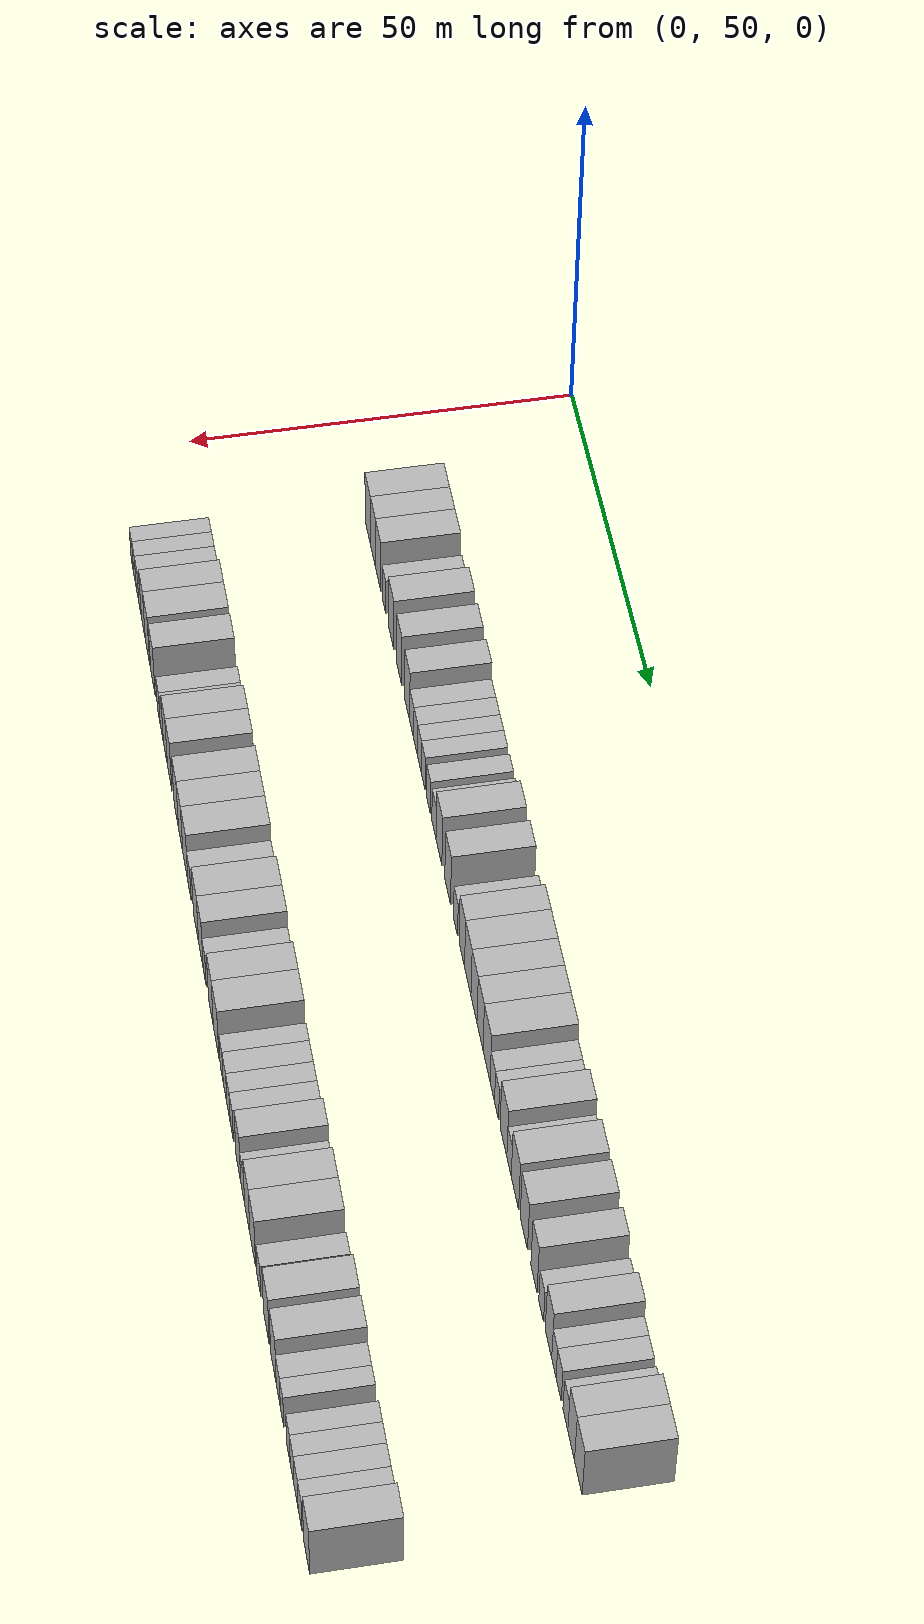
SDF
<sdf version="1.6">
 <world name="default">
  <model name="building_136">
   <static>1</static>
   <pose>25.0000 69.2811 0 0.000000 0.000000 0.000000</pose>
   <link name="link">
    <pose>0 0 4.50 0 0 0</pose>
    <collision name="collision"><geometry><box><size>10.0000 4.1130 9.0000</size></box></geometry></collision>
    <visual name="visual">
     <cast_shadows>0</cast_shadows>
     <geometry><box><size>10.0000 4.1130 9.0000</size></box></geometry>
     <material>
      <script>
       <uri>model://HANNAS_wall/materials/scripts</uri>
       <uri>model://HANNAS_wall/materials/textures</uri>
       <name>vrc/HANNAS_wall</name>
      </script>
     </material>
    </visual>
   </link>
  </model>
  <model name="building_137">
   <static>1</static>
   <pose>25.0000 73.2158 0 0.000000 0.000000 0.000000</pose>
   <link name="link">
    <pose>0 0 4.50 0 0 0</pose>
    <collision name="collision"><geometry><box><size>10.0000 3.7565 9.0000</size></box></geometry></collision>
    <visual name="visual">
     <cast_shadows>0</cast_shadows>
     <geometry><box><size>10.0000 3.7565 9.0000</size></box></geometry>
     <material>
      <script>
       <uri>model://HANNAS_wall/materials/scripts</uri>
       <uri>model://HANNAS_wall/materials/textures</uri>
       <name>vrc/HANNAS_wall</name>
      </script>
     </material>
    </visual>
   </link>
  </model>
  <model name="building_138">
   <static>1</static>
   <pose>25.0000 77.1332 0 0.000000 0.000000 0.000000</pose>
   <link name="link">
    <pose>0 0 4.50 0 0 0</pose>
    <collision name="collision"><geometry><box><size>10.0000 4.0782 9.0000</size></box></geometry></collision>
    <visual name="visual">
     <cast_shadows>0</cast_shadows>
     <geometry><box><size>10.0000 4.0782 9.0000</size></box></geometry>
     <material>
      <script>
       <uri>model://HANNAS_wall/materials/scripts</uri>
       <uri>model://HANNAS_wall/materials/textures</uri>
       <name>vrc/HANNAS_wall</name>
      </script>
     </material>
    </visual>
   </link>
  </model>
  <model name="building_139">
   <static>1</static>
   <pose>25.0000 81.5119 0 0.000000 0.000000 0.000000</pose>
   <link name="link">
    <pose>0 0 3.00 0 0 0</pose>
    <collision name="collision"><geometry><box><size>10.0000 2.6791 6.0000</size></box></geometry></collision>
    <visual name="visual">
     <cast_shadows>0</cast_shadows>
     <geometry><box><size>10.0000 2.6791 6.0000</size></box></geometry>
     <material>
      <script>
       <uri>model://HANNAS_wall/materials/scripts</uri>
       <uri>model://HANNAS_wall/materials/textures</uri>
       <name>vrc/HANNAS_wall</name>
      </script>
     </material>
    </visual>
   </link>
  </model>
  <model name="building_140">
   <static>1</static>
   <pose>25.0000 86.8798 0 0.000000 0.000000 0.000000</pose>
   <link name="link">
    <pose>0 0 4.50 0 0 0</pose>
    <collision name="collision"><geometry><box><size>10.0000 4.0568 9.0000</size></box></geometry></collision>
    <visual name="visual">
     <cast_shadows>0</cast_shadows>
     <geometry><box><size>10.0000 4.0568 9.0000</size></box></geometry>
     <material>
      <script>
       <uri>model://HANNAS_wall/materials/scripts</uri>
       <uri>model://HANNAS_wall/materials/textures</uri>
       <name>vrc/HANNAS_wall</name>
      </script>
     </material>
    </visual>
   </link>
  </model>
  <model name="building_141">
   <static>1</static>
   <pose>25.0000 92.8089 0 0.000000 0.000000 0.000000</pose>
   <link name="link">
    <pose>0 0 4.50 0 0 0</pose>
    <collision name="collision"><geometry><box><size>10.0000 3.8013 9.0000</size></box></geometry></collision>
    <visual name="visual">
     <cast_shadows>0</cast_shadows>
     <geometry><box><size>10.0000 3.8013 9.0000</size></box></geometry>
     <material>
      <script>
       <uri>model://HANNAS_wall/materials/scripts</uri>
       <uri>model://HANNAS_wall/materials/textures</uri>
       <name>vrc/HANNAS_wall</name>
      </script>
     </material>
    </visual>
   </link>
  </model>
  <model name="building_142">
   <static>1</static>
   <pose>25.0000 98.5995 0 0.000000 0.000000 0.000000</pose>
   <link name="link">
    <pose>0 0 4.50 0 0 0</pose>
    <collision name="collision"><geometry><box><size>10.0000 3.7799 9.0000</size></box></geometry></collision>
    <visual name="visual">
     <cast_shadows>0</cast_shadows>
     <geometry><box><size>10.0000 3.7799 9.0000</size></box></geometry>
     <material>
      <script>
       <uri>model://HANNAS_wall/materials/scripts</uri>
       <uri>model://HANNAS_wall/materials/textures</uri>
       <name>vrc/HANNAS_wall</name>
      </script>
     </material>
    </visual>
   </link>
  </model>
  <model name="building_143">
   <static>1</static>
   <pose>25.0000 101.9393 0 0.000000 0.000000 0.000000</pose>
   <link name="link">
    <pose>0 0 3.00 0 0 0</pose>
    <collision name="collision"><geometry><box><size>10.0000 2.8997 6.0000</size></box></geometry></collision>
    <visual name="visual">
     <cast_shadows>0</cast_shadows>
     <geometry><box><size>10.0000 2.8997 6.0000</size></box></geometry>
     <material>
      <script>
       <uri>model://HANNAS_wall/materials/scripts</uri>
       <uri>model://HANNAS_wall/materials/textures</uri>
       <name>vrc/HANNAS_wall</name>
      </script>
     </material>
    </visual>
   </link>
  </model>
  <model name="building_144">
   <static>1</static>
   <pose>25.0000 104.7844 0 0.000000 0.000000 0.000000</pose>
   <link name="link">
    <pose>0 0 3.00 0 0 0</pose>
    <collision name="collision"><geometry><box><size>10.0000 2.7905 6.0000</size></box></geometry></collision>
    <visual name="visual">
     <cast_shadows>0</cast_shadows>
     <geometry><box><size>10.0000 2.7905 6.0000</size></box></geometry>
     <material>
      <script>
       <uri>model://HANNAS_wall/materials/scripts</uri>
       <uri>model://HANNAS_wall/materials/textures</uri>
       <name>vrc/HANNAS_wall</name>
      </script>
     </material>
    </visual>
   </link>
  </model>
  <model name="building_145">
   <static>1</static>
   <pose>25.0000 107.4139 0 0.000000 0.000000 0.000000</pose>
   <link name="link">
    <pose>0 0 3.00 0 0 0</pose>
    <collision name="collision"><geometry><box><size>10.0000 2.4684 6.0000</size></box></geometry></collision>
    <visual name="visual">
     <cast_shadows>0</cast_shadows>
     <geometry><box><size>10.0000 2.4684 6.0000</size></box></geometry>
     <material>
      <script>
       <uri>model://HANNAS_wall/materials/scripts</uri>
       <uri>model://HANNAS_wall/materials/textures</uri>
       <name>vrc/HANNAS_wall</name>
      </script>
     </material>
    </visual>
   </link>
  </model>
  <model name="building_146">
   <static>1</static>
   <pose>25.0000 109.9983 0 0.000000 0.000000 0.000000</pose>
   <link name="link">
    <pose>0 0 3.00 0 0 0</pose>
    <collision name="collision"><geometry><box><size>10.0000 2.7004 6.0000</size></box></geometry></collision>
    <visual name="visual">
     <cast_shadows>0</cast_shadows>
     <geometry><box><size>10.0000 2.7004 6.0000</size></box></geometry>
     <material>
      <script>
       <uri>model://HANNAS_wall/materials/scripts</uri>
       <uri>model://HANNAS_wall/materials/textures</uri>
       <name>vrc/HANNAS_wall</name>
      </script>
     </material>
    </visual>
   </link>
  </model>
  <model name="building_147">
   <static>1</static>
   <pose>25.0000 113.7192 0 0.000000 0.000000 0.000000</pose>
   <link name="link">
    <pose>0 0 3.00 0 0 0</pose>
    <collision name="collision"><geometry><box><size>10.0000 2.7413 6.0000</size></box></geometry></collision>
    <visual name="visual">
     <cast_shadows>0</cast_shadows>
     <geometry><box><size>10.0000 2.7413 6.0000</size></box></geometry>
     <material>
      <script>
       <uri>model://HANNAS_wall/materials/scripts</uri>
       <uri>model://HANNAS_wall/materials/textures</uri>
       <name>vrc/HANNAS_wall</name>
      </script>
     </material>
    </visual>
   </link>
  </model>
  <model name="building_148">
   <static>1</static>
   <pose>25.0000 117.5312 0 0.000000 0.000000 0.000000</pose>
   <link name="link">
    <pose>0 0 3.00 0 0 0</pose>
    <collision name="collision"><geometry><box><size>10.0000 2.8827 6.0000</size></box></geometry></collision>
    <visual name="visual">
     <cast_shadows>0</cast_shadows>
     <geometry><box><size>10.0000 2.8827 6.0000</size></box></geometry>
     <material>
      <script>
       <uri>model://HANNAS_wall/materials/scripts</uri>
       <uri>model://HANNAS_wall/materials/textures</uri>
       <name>vrc/HANNAS_wall</name>
      </script>
     </material>
    </visual>
   </link>
  </model>
  <model name="building_149">
   <static>1</static>
   <pose>25.0000 120.9709 0 0.000000 0.000000 0.000000</pose>
   <link name="link">
    <pose>0 0 4.50 0 0 0</pose>
    <collision name="collision"><geometry><box><size>10.0000 3.9967 9.0000</size></box></geometry></collision>
    <visual name="visual">
     <cast_shadows>0</cast_shadows>
     <geometry><box><size>10.0000 3.9967 9.0000</size></box></geometry>
     <material>
      <script>
       <uri>model://HANNAS_wall/materials/scripts</uri>
       <uri>model://HANNAS_wall/materials/textures</uri>
       <name>vrc/HANNAS_wall</name>
      </script>
     </material>
    </visual>
   </link>
  </model>
  <model name="building_150">
   <static>1</static>
   <pose>25.0000 126.9015 0 0.000000 0.000000 0.000000</pose>
   <link name="link">
    <pose>0 0 4.50 0 0 0</pose>
    <collision name="collision"><geometry><box><size>10.0000 3.8645 9.0000</size></box></geometry></collision>
    <visual name="visual">
     <cast_shadows>0</cast_shadows>
     <geometry><box><size>10.0000 3.8645 9.0000</size></box></geometry>
     <material>
      <script>
       <uri>model://HANNAS_wall/materials/scripts</uri>
       <uri>model://HANNAS_wall/materials/textures</uri>
       <name>vrc/HANNAS_wall</name>
      </script>
     </material>
    </visual>
   </link>
  </model>
  <model name="building_151">
   <static>1</static>
   <pose>25.0000 132.1792 0 0.000000 0.000000 0.000000</pose>
   <link name="link">
    <pose>0 0 3.00 0 0 0</pose>
    <collision name="collision"><geometry><box><size>10.0000 2.6908 6.0000</size></box></geometry></collision>
    <visual name="visual">
     <cast_shadows>0</cast_shadows>
     <geometry><box><size>10.0000 2.6908 6.0000</size></box></geometry>
     <material>
      <script>
       <uri>model://HANNAS_wall/materials/scripts</uri>
       <uri>model://HANNAS_wall/materials/textures</uri>
       <name>vrc/HANNAS_wall</name>
      </script>
     </material>
    </visual>
   </link>
  </model>
  <model name="building_152">
   <static>1</static>
   <pose>25.0000 136.3350 0 0.000000 0.000000 0.000000</pose>
   <link name="link">
    <pose>0 0 4.50 0 0 0</pose>
    <collision name="collision"><geometry><box><size>10.0000 3.6209 9.0000</size></box></geometry></collision>
    <visual name="visual">
     <cast_shadows>0</cast_shadows>
     <geometry><box><size>10.0000 3.6209 9.0000</size></box></geometry>
     <material>
      <script>
       <uri>model://HANNAS_wall/materials/scripts</uri>
       <uri>model://HANNAS_wall/materials/textures</uri>
       <name>vrc/HANNAS_wall</name>
      </script>
     </material>
    </visual>
   </link>
  </model>
  <model name="building_153">
   <static>1</static>
   <pose>25.0000 140.2456 0 0.000000 0.000000 0.000000</pose>
   <link name="link">
    <pose>0 0 4.50 0 0 0</pose>
    <collision name="collision"><geometry><box><size>10.0000 4.2003 9.0000</size></box></geometry></collision>
    <visual name="visual">
     <cast_shadows>0</cast_shadows>
     <geometry><box><size>10.0000 4.2003 9.0000</size></box></geometry>
     <material>
      <script>
       <uri>model://HANNAS_wall/materials/scripts</uri>
       <uri>model://HANNAS_wall/materials/textures</uri>
       <name>vrc/HANNAS_wall</name>
      </script>
     </material>
    </visual>
   </link>
  </model>
  <model name="building_154">
   <static>1</static>
   <pose>25.0000 144.2896 0 0.000000 0.000000 0.000000</pose>
   <link name="link">
    <pose>0 0 4.50 0 0 0</pose>
    <collision name="collision"><geometry><box><size>10.0000 3.8876 9.0000</size></box></geometry></collision>
    <visual name="visual">
     <cast_shadows>0</cast_shadows>
     <geometry><box><size>10.0000 3.8876 9.0000</size></box></geometry>
     <material>
      <script>
       <uri>model://HANNAS_wall/materials/scripts</uri>
       <uri>model://HANNAS_wall/materials/textures</uri>
       <name>vrc/HANNAS_wall</name>
      </script>
     </material>
    </visual>
   </link>
  </model>
  <model name="building_155">
   <static>1</static>
   <pose>25.0000 148.1737 0 0.000000 0.000000 0.000000</pose>
   <link name="link">
    <pose>0 0 4.50 0 0 0</pose>
    <collision name="collision"><geometry><box><size>10.0000 3.8808 9.0000</size></box></geometry></collision>
    <visual name="visual">
     <cast_shadows>0</cast_shadows>
     <geometry><box><size>10.0000 3.8808 9.0000</size></box></geometry>
     <material>
      <script>
       <uri>model://HANNAS_wall/materials/scripts</uri>
       <uri>model://HANNAS_wall/materials/textures</uri>
       <name>vrc/HANNAS_wall</name>
      </script>
     </material>
    </visual>
   </link>
  </model>
  <model name="building_156">
   <static>1</static>
   <pose>25.0000 152.3633 0 0.000000 0.000000 0.000000</pose>
   <link name="link">
    <pose>0 0 4.50 0 0 0</pose>
    <collision name="collision"><geometry><box><size>10.0000 4.4983 9.0000</size></box></geometry></collision>
    <visual name="visual">
     <cast_shadows>0</cast_shadows>
     <geometry><box><size>10.0000 4.4983 9.0000</size></box></geometry>
     <material>
      <script>
       <uri>model://HANNAS_wall/materials/scripts</uri>
       <uri>model://HANNAS_wall/materials/textures</uri>
       <name>vrc/HANNAS_wall</name>
      </script>
     </material>
    </visual>
   </link>
  </model>
  <model name="building_157">
   <static>1</static>
   <pose>25.0000 156.0036 0 0.000000 0.000000 0.000000</pose>
   <link name="link">
    <pose>0 0 3.00 0 0 0</pose>
    <collision name="collision"><geometry><box><size>10.0000 2.7824 6.0000</size></box></geometry></collision>
    <visual name="visual">
     <cast_shadows>0</cast_shadows>
     <geometry><box><size>10.0000 2.7824 6.0000</size></box></geometry>
     <material>
      <script>
       <uri>model://HANNAS_wall/materials/scripts</uri>
       <uri>model://HANNAS_wall/materials/textures</uri>
       <name>vrc/HANNAS_wall</name>
      </script>
     </material>
    </visual>
   </link>
  </model>
  <model name="building_158">
   <static>1</static>
   <pose>25.0000 158.6211 0 0.000000 0.000000 0.000000</pose>
   <link name="link">
    <pose>0 0 3.00 0 0 0</pose>
    <collision name="collision"><geometry><box><size>10.0000 2.4524 6.0000</size></box></geometry></collision>
    <visual name="visual">
     <cast_shadows>0</cast_shadows>
     <geometry><box><size>10.0000 2.4524 6.0000</size></box></geometry>
     <material>
      <script>
       <uri>model://HANNAS_wall/materials/scripts</uri>
       <uri>model://HANNAS_wall/materials/textures</uri>
       <name>vrc/HANNAS_wall</name>
      </script>
     </material>
    </visual>
   </link>
  </model>
  <model name="building_159">
   <static>1</static>
   <pose>25.0000 162.9268 0 0.000000 0.000000 0.000000</pose>
   <link name="link">
    <pose>0 0 4.50 0 0 0</pose>
    <collision name="collision"><geometry><box><size>10.0000 4.1589 9.0000</size></box></geometry></collision>
    <visual name="visual">
     <cast_shadows>0</cast_shadows>
     <geometry><box><size>10.0000 4.1589 9.0000</size></box></geometry>
     <material>
      <script>
       <uri>model://HANNAS_wall/materials/scripts</uri>
       <uri>model://HANNAS_wall/materials/textures</uri>
       <name>vrc/HANNAS_wall</name>
      </script>
     </material>
    </visual>
   </link>
  </model>
  <model name="building_160">
   <static>1</static>
   <pose>25.0000 166.3669 0 0.000000 0.000000 0.000000</pose>
   <link name="link">
    <pose>0 0 3.00 0 0 0</pose>
    <collision name="collision"><geometry><box><size>10.0000 2.7214 6.0000</size></box></geometry></collision>
    <visual name="visual">
     <cast_shadows>0</cast_shadows>
     <geometry><box><size>10.0000 2.7214 6.0000</size></box></geometry>
     <material>
      <script>
       <uri>model://HANNAS_wall/materials/scripts</uri>
       <uri>model://HANNAS_wall/materials/textures</uri>
       <name>vrc/HANNAS_wall</name>
      </script>
     </material>
    </visual>
   </link>
  </model>
  <model name="building_161">
   <static>1</static>
   <pose>25.0000 169.9354 0 0.000000 0.000000 0.000000</pose>
   <link name="link">
    <pose>0 0 4.50 0 0 0</pose>
    <collision name="collision"><geometry><box><size>10.0000 4.4155 9.0000</size></box></geometry></collision>
    <visual name="visual">
     <cast_shadows>0</cast_shadows>
     <geometry><box><size>10.0000 4.4155 9.0000</size></box></geometry>
     <material>
      <script>
       <uri>model://HANNAS_wall/materials/scripts</uri>
       <uri>model://HANNAS_wall/materials/textures</uri>
       <name>vrc/HANNAS_wall</name>
      </script>
     </material>
    </visual>
   </link>
  </model>
  <model name="building_162">
   <static>1</static>
   <pose>25.0000 175.3238 0 0.000000 0.000000 0.000000</pose>
   <link name="link">
    <pose>0 0 4.50 0 0 0</pose>
    <collision name="collision"><geometry><box><size>10.0000 4.3613 9.0000</size></box></geometry></collision>
    <visual name="visual">
     <cast_shadows>0</cast_shadows>
     <geometry><box><size>10.0000 4.3613 9.0000</size></box></geometry>
     <material>
      <script>
       <uri>model://HANNAS_wall/materials/scripts</uri>
       <uri>model://HANNAS_wall/materials/textures</uri>
       <name>vrc/HANNAS_wall</name>
      </script>
     </material>
    </visual>
   </link>
  </model>
  <model name="building_163">
   <static>1</static>
   <pose>25.0000 181.3197 0 0.000000 0.000000 0.000000</pose>
   <link name="link">
    <pose>0 0 4.50 0 0 0</pose>
    <collision name="collision"><geometry><box><size>10.0000 3.6304 9.0000</size></box></geometry></collision>
    <visual name="visual">
     <cast_shadows>0</cast_shadows>
     <geometry><box><size>10.0000 3.6304 9.0000</size></box></geometry>
     <material>
      <script>
       <uri>model://HANNAS_wall/materials/scripts</uri>
       <uri>model://HANNAS_wall/materials/textures</uri>
       <name>vrc/HANNAS_wall</name>
      </script>
     </material>
    </visual>
   </link>
  </model>
  <model name="building_164">
   <static>1</static>
   <pose>25.0000 185.5203 0 0.000000 0.000000 0.000000</pose>
   <link name="link">
    <pose>0 0 3.00 0 0 0</pose>
    <collision name="collision"><geometry><box><size>10.0000 2.7708 6.0000</size></box></geometry></collision>
    <visual name="visual">
     <cast_shadows>0</cast_shadows>
     <geometry><box><size>10.0000 2.7708 6.0000</size></box></geometry>
     <material>
      <script>
       <uri>model://HANNAS_wall/materials/scripts</uri>
       <uri>model://HANNAS_wall/materials/textures</uri>
       <name>vrc/HANNAS_wall</name>
      </script>
     </material>
    </visual>
   </link>
  </model>
  <model name="building_165">
   <static>1</static>
   <pose>25.0000 189.7708 0 0.000000 0.000000 0.000000</pose>
   <link name="link">
    <pose>0 0 4.50 0 0 0</pose>
    <collision name="collision"><geometry><box><size>10.0000 3.7301 9.0000</size></box></geometry></collision>
    <visual name="visual">
     <cast_shadows>0</cast_shadows>
     <geometry><box><size>10.0000 3.7301 9.0000</size></box></geometry>
     <material>
      <script>
       <uri>model://HANNAS_wall/materials/scripts</uri>
       <uri>model://HANNAS_wall/materials/textures</uri>
       <name>vrc/HANNAS_wall</name>
      </script>
     </material>
    </visual>
   </link>
  </model>
  <model name="building_166">
   <static>1</static>
   <pose>25.0000 192.8603 0 0.000000 0.000000 0.000000</pose>
   <link name="link">
    <pose>0 0 3.00 0 0 0</pose>
    <collision name="collision"><geometry><box><size>10.0000 2.4489 6.0000</size></box></geometry></collision>
    <visual name="visual">
     <cast_shadows>0</cast_shadows>
     <geometry><box><size>10.0000 2.4489 6.0000</size></box></geometry>
     <material>
      <script>
       <uri>model://HANNAS_wall/materials/scripts</uri>
       <uri>model://HANNAS_wall/materials/textures</uri>
       <name>vrc/HANNAS_wall</name>
      </script>
     </material>
    </visual>
   </link>
  </model>
  <model name="building_167">
   <static>1</static>
   <pose>25.0000 195.5602 0 0.000000 0.000000 0.000000</pose>
   <link name="link">
    <pose>0 0 3.00 0 0 0</pose>
    <collision name="collision"><geometry><box><size>10.0000 2.9510 6.0000</size></box></geometry></collision>
    <visual name="visual">
     <cast_shadows>0</cast_shadows>
     <geometry><box><size>10.0000 2.9510 6.0000</size></box></geometry>
     <material>
      <script>
       <uri>model://HANNAS_wall/materials/scripts</uri>
       <uri>model://HANNAS_wall/materials/textures</uri>
       <name>vrc/HANNAS_wall</name>
      </script>
     </material>
    </visual>
   </link>
  </model>
  <model name="building_168">
   <static>1</static>
   <pose>25.0000 199.4035 0 0.000000 0.000000 0.000000</pose>
   <link name="link">
    <pose>0 0 3.00 0 0 0</pose>
    <collision name="collision"><geometry><box><size>10.0000 2.7356 6.0000</size></box></geometry></collision>
    <visual name="visual">
     <cast_shadows>0</cast_shadows>
     <geometry><box><size>10.0000 2.7356 6.0000</size></box></geometry>
     <material>
      <script>
       <uri>model://HANNAS_wall/materials/scripts</uri>
       <uri>model://HANNAS_wall/materials/textures</uri>
       <name>vrc/HANNAS_wall</name>
      </script>
     </material>
    </visual>
   </link>
  </model>
  <model name="building_169">
   <static>1</static>
   <pose>25.0000 202.6175 0 0.000000 0.000000 0.000000</pose>
   <link name="link">
    <pose>0 0 4.50 0 0 0</pose>
    <collision name="collision"><geometry><box><size>10.0000 3.6924 9.0000</size></box></geometry></collision>
    <visual name="visual">
     <cast_shadows>0</cast_shadows>
     <geometry><box><size>10.0000 3.6924 9.0000</size></box></geometry>
     <material>
      <script>
       <uri>model://HANNAS_wall/materials/scripts</uri>
       <uri>model://HANNAS_wall/materials/textures</uri>
       <name>vrc/HANNAS_wall</name>
      </script>
     </material>
    </visual>
   </link>
  </model>
  <model name="building_170">
   <static>1</static>
   <pose>25.0000 206.5774 0 0.000000 0.000000 0.000000</pose>
   <link name="link">
    <pose>0 0 4.50 0 0 0</pose>
    <collision name="collision"><geometry><box><size>10.0000 4.2272 9.0000</size></box></geometry></collision>
    <visual name="visual">
     <cast_shadows>0</cast_shadows>
     <geometry><box><size>10.0000 4.2272 9.0000</size></box></geometry>
     <material>
      <script>
       <uri>model://HANNAS_wall/materials/scripts</uri>
       <uri>model://HANNAS_wall/materials/textures</uri>
       <name>vrc/HANNAS_wall</name>
      </script>
     </material>
    </visual>
   </link>
  </model>
  <model name="building_376">
   <static>1</static>
   <pose>55.0000 69.9909 0 0.000000 0.000000 0.000000</pose>
   <link name="link">
    <pose>0 0 3.00 0 0 0</pose>
    <collision name="collision"><geometry><box><size>10.0000 2.4208 6.0000</size></box></geometry></collision>
    <visual name="visual">
     <cast_shadows>0</cast_shadows>
     <geometry><box><size>10.0000 2.4208 6.0000</size></box></geometry>
     <material>
      <script>
       <uri>model://HANNAS_wall/materials/scripts</uri>
       <uri>model://HANNAS_wall/materials/textures</uri>
       <name>vrc/HANNAS_wall</name>
      </script>
     </material>
    </visual>
   </link>
  </model>
  <model name="building_377">
   <static>1</static>
   <pose>55.0000 72.4276 0 0.000000 0.000000 0.000000</pose>
   <link name="link">
    <pose>0 0 3.00 0 0 0</pose>
    <collision name="collision"><geometry><box><size>10.0000 2.4527 6.0000</size></box></geometry></collision>
    <visual name="visual">
     <cast_shadows>0</cast_shadows>
     <geometry><box><size>10.0000 2.4527 6.0000</size></box></geometry>
     <material>
      <script>
       <uri>model://HANNAS_wall/materials/scripts</uri>
       <uri>model://HANNAS_wall/materials/textures</uri>
       <name>vrc/HANNAS_wall</name>
      </script>
     </material>
    </visual>
   </link>
  </model>
  <model name="building_378">
   <static>1</static>
   <pose>55.0000 74.9219 0 0.000000 0.000000 0.000000</pose>
   <link name="link">
    <pose>0 0 3.00 0 0 0</pose>
    <collision name="collision"><geometry><box><size>10.0000 2.5360 6.0000</size></box></geometry></collision>
    <visual name="visual">
     <cast_shadows>0</cast_shadows>
     <geometry><box><size>10.0000 2.5360 6.0000</size></box></geometry>
     <material>
      <script>
       <uri>model://HANNAS_wall/materials/scripts</uri>
       <uri>model://HANNAS_wall/materials/textures</uri>
       <name>vrc/HANNAS_wall</name>
      </script>
     </material>
    </visual>
   </link>
  </model>
  <model name="building_379">
   <static>1</static>
   <pose>55.0000 77.4149 0 0.000000 0.000000 0.000000</pose>
   <link name="link">
    <pose>0 0 3.00 0 0 0</pose>
    <collision name="collision"><geometry><box><size>10.0000 2.4500 6.0000</size></box></geometry></collision>
    <visual name="visual">
     <cast_shadows>0</cast_shadows>
     <geometry><box><size>10.0000 2.4500 6.0000</size></box></geometry>
     <material>
      <script>
       <uri>model://HANNAS_wall/materials/scripts</uri>
       <uri>model://HANNAS_wall/materials/textures</uri>
       <name>vrc/HANNAS_wall</name>
      </script>
     </material>
    </visual>
   </link>
  </model>
  <model name="building_380">
   <static>1</static>
   <pose>55.0000 80.4563 0 0.000000 0.000000 0.000000</pose>
   <link name="link">
    <pose>0 0 4.50 0 0 0</pose>
    <collision name="collision"><geometry><box><size>10.0000 3.6328 9.0000</size></box></geometry></collision>
    <visual name="visual">
     <cast_shadows>0</cast_shadows>
     <geometry><box><size>10.0000 3.6328 9.0000</size></box></geometry>
     <material>
      <script>
       <uri>model://HANNAS_wall/materials/scripts</uri>
       <uri>model://HANNAS_wall/materials/textures</uri>
       <name>vrc/HANNAS_wall</name>
      </script>
     </material>
    </visual>
   </link>
  </model>
  <model name="building_381">
   <static>1</static>
   <pose>55.0000 84.3814 0 0.000000 0.000000 0.000000</pose>
   <link name="link">
    <pose>0 0 4.50 0 0 0</pose>
    <collision name="collision"><geometry><box><size>10.0000 4.2175 9.0000</size></box></geometry></collision>
    <visual name="visual">
     <cast_shadows>0</cast_shadows>
     <geometry><box><size>10.0000 4.2175 9.0000</size></box></geometry>
     <material>
      <script>
       <uri>model://HANNAS_wall/materials/scripts</uri>
       <uri>model://HANNAS_wall/materials/textures</uri>
       <name>vrc/HANNAS_wall</name>
      </script>
     </material>
    </visual>
   </link>
  </model>
  <model name="building_382">
   <static>1</static>
   <pose>55.0000 89.4736 0 0.000000 0.000000 0.000000</pose>
   <link name="link">
    <pose>0 0 4.50 0 0 0</pose>
    <collision name="collision"><geometry><box><size>10.0000 3.9668 9.0000</size></box></geometry></collision>
    <visual name="visual">
     <cast_shadows>0</cast_shadows>
     <geometry><box><size>10.0000 3.9668 9.0000</size></box></geometry>
     <material>
      <script>
       <uri>model://HANNAS_wall/materials/scripts</uri>
       <uri>model://HANNAS_wall/materials/textures</uri>
       <name>vrc/HANNAS_wall</name>
      </script>
     </material>
    </visual>
   </link>
  </model>
  <model name="building_383">
   <static>1</static>
   <pose>55.0000 94.7423 0 0.000000 0.000000 0.000000</pose>
   <link name="link">
    <pose>0 0 3.00 0 0 0</pose>
    <collision name="collision"><geometry><box><size>10.0000 2.5707 6.0000</size></box></geometry></collision>
    <visual name="visual">
     <cast_shadows>0</cast_shadows>
     <geometry><box><size>10.0000 2.5707 6.0000</size></box></geometry>
     <material>
      <script>
       <uri>model://HANNAS_wall/materials/scripts</uri>
       <uri>model://HANNAS_wall/materials/textures</uri>
       <name>vrc/HANNAS_wall</name>
      </script>
     </material>
    </visual>
   </link>
  </model>
  <model name="building_384">
   <static>1</static>
   <pose>55.0000 97.5149 0 0.000000 0.000000 0.000000</pose>
   <link name="link">
    <pose>0 0 3.00 0 0 0</pose>
    <collision name="collision"><geometry><box><size>10.0000 2.9746 6.0000</size></box></geometry></collision>
    <visual name="visual">
     <cast_shadows>0</cast_shadows>
     <geometry><box><size>10.0000 2.9746 6.0000</size></box></geometry>
     <material>
      <script>
       <uri>model://HANNAS_wall/materials/scripts</uri>
       <uri>model://HANNAS_wall/materials/textures</uri>
       <name>vrc/HANNAS_wall</name>
      </script>
     </material>
    </visual>
   </link>
  </model>
  <model name="building_385">
   <static>1</static>
   <pose>55.0000 100.8294 0 0.000000 0.000000 0.000000</pose>
   <link name="link">
    <pose>0 0 4.50 0 0 0</pose>
    <collision name="collision"><geometry><box><size>10.0000 3.6543 9.0000</size></box></geometry></collision>
    <visual name="visual">
     <cast_shadows>0</cast_shadows>
     <geometry><box><size>10.0000 3.6543 9.0000</size></box></geometry>
     <material>
      <script>
       <uri>model://HANNAS_wall/materials/scripts</uri>
       <uri>model://HANNAS_wall/materials/textures</uri>
       <name>vrc/HANNAS_wall</name>
      </script>
     </material>
    </visual>
   </link>
  </model>
  <model name="building_386">
   <static>1</static>
   <pose>55.0000 104.5863 0 0.000000 0.000000 0.000000</pose>
   <link name="link">
    <pose>0 0 4.50 0 0 0</pose>
    <collision name="collision"><geometry><box><size>10.0000 3.8594 9.0000</size></box></geometry></collision>
    <visual name="visual">
     <cast_shadows>0</cast_shadows>
     <geometry><box><size>10.0000 3.8594 9.0000</size></box></geometry>
     <material>
      <script>
       <uri>model://HANNAS_wall/materials/scripts</uri>
       <uri>model://HANNAS_wall/materials/textures</uri>
       <name>vrc/HANNAS_wall</name>
      </script>
     </material>
    </visual>
   </link>
  </model>
  <model name="building_387">
   <static>1</static>
   <pose>55.0000 110.4452 0 0.000000 0.000000 0.000000</pose>
   <link name="link">
    <pose>0 0 4.50 0 0 0</pose>
    <collision name="collision"><geometry><box><size>10.0000 3.8584 9.0000</size></box></geometry></collision>
    <visual name="visual">
     <cast_shadows>0</cast_shadows>
     <geometry><box><size>10.0000 3.8584 9.0000</size></box></geometry>
     <material>
      <script>
       <uri>model://HANNAS_wall/materials/scripts</uri>
       <uri>model://HANNAS_wall/materials/textures</uri>
       <name>vrc/HANNAS_wall</name>
      </script>
     </material>
    </visual>
   </link>
  </model>
  <model name="building_388">
   <static>1</static>
   <pose>55.0000 114.2874 0 0.000000 0.000000 0.000000</pose>
   <link name="link">
    <pose>0 0 4.50 0 0 0</pose>
    <collision name="collision"><geometry><box><size>10.0000 3.8259 9.0000</size></box></geometry></collision>
    <visual name="visual">
     <cast_shadows>0</cast_shadows>
     <geometry><box><size>10.0000 3.8259 9.0000</size></box></geometry>
     <material>
      <script>
       <uri>model://HANNAS_wall/materials/scripts</uri>
       <uri>model://HANNAS_wall/materials/textures</uri>
       <name>vrc/HANNAS_wall</name>
      </script>
     </material>
    </visual>
   </link>
  </model>
  <model name="building_389">
   <static>1</static>
   <pose>55.0000 118.3838 0 0.000000 0.000000 0.000000</pose>
   <link name="link">
    <pose>0 0 4.50 0 0 0</pose>
    <collision name="collision"><geometry><box><size>10.0000 4.3668 9.0000</size></box></geometry></collision>
    <visual name="visual">
     <cast_shadows>0</cast_shadows>
     <geometry><box><size>10.0000 4.3668 9.0000</size></box></geometry>
     <material>
      <script>
       <uri>model://HANNAS_wall/materials/scripts</uri>
       <uri>model://HANNAS_wall/materials/textures</uri>
       <name>vrc/HANNAS_wall</name>
      </script>
     </material>
    </visual>
   </link>
  </model>
  <model name="building_390">
   <static>1</static>
   <pose>55.0000 121.9257 0 0.000000 0.000000 0.000000</pose>
   <link name="link">
    <pose>0 0 3.00 0 0 0</pose>
    <collision name="collision"><geometry><box><size>10.0000 2.7171 6.0000</size></box></geometry></collision>
    <visual name="visual">
     <cast_shadows>0</cast_shadows>
     <geometry><box><size>10.0000 2.7171 6.0000</size></box></geometry>
     <material>
      <script>
       <uri>model://HANNAS_wall/materials/scripts</uri>
       <uri>model://HANNAS_wall/materials/textures</uri>
       <name>vrc/HANNAS_wall</name>
      </script>
     </material>
    </visual>
   </link>
  </model>
  <model name="building_391">
   <static>1</static>
   <pose>55.0000 127.4214 0 0.000000 0.000000 0.000000</pose>
   <link name="link">
    <pose>0 0 4.50 0 0 0</pose>
    <collision name="collision"><geometry><box><size>10.0000 4.2741 9.0000</size></box></geometry></collision>
    <visual name="visual">
     <cast_shadows>0</cast_shadows>
     <geometry><box><size>10.0000 4.2741 9.0000</size></box></geometry>
     <material>
      <script>
       <uri>model://HANNAS_wall/materials/scripts</uri>
       <uri>model://HANNAS_wall/materials/textures</uri>
       <name>vrc/HANNAS_wall</name>
      </script>
     </material>
    </visual>
   </link>
  </model>
  <model name="building_392">
   <static>1</static>
   <pose>55.0000 131.5018 0 0.000000 0.000000 0.000000</pose>
   <link name="link">
    <pose>0 0 4.50 0 0 0</pose>
    <collision name="collision"><geometry><box><size>10.0000 3.8867 9.0000</size></box></geometry></collision>
    <visual name="visual">
     <cast_shadows>0</cast_shadows>
     <geometry><box><size>10.0000 3.8867 9.0000</size></box></geometry>
     <material>
      <script>
       <uri>model://HANNAS_wall/materials/scripts</uri>
       <uri>model://HANNAS_wall/materials/textures</uri>
       <name>vrc/HANNAS_wall</name>
      </script>
     </material>
    </visual>
   </link>
  </model>
  <model name="building_393">
   <static>1</static>
   <pose>55.0000 134.6595 0 0.000000 0.000000 0.000000</pose>
   <link name="link">
    <pose>0 0 3.00 0 0 0</pose>
    <collision name="collision"><geometry><box><size>10.0000 2.4288 6.0000</size></box></geometry></collision>
    <visual name="visual">
     <cast_shadows>0</cast_shadows>
     <geometry><box><size>10.0000 2.4288 6.0000</size></box></geometry>
     <material>
      <script>
       <uri>model://HANNAS_wall/materials/scripts</uri>
       <uri>model://HANNAS_wall/materials/textures</uri>
       <name>vrc/HANNAS_wall</name>
      </script>
     </material>
    </visual>
   </link>
  </model>
  <model name="building_394">
   <static>1</static>
   <pose>55.0000 139.8196 0 0.000000 0.000000 0.000000</pose>
   <link name="link">
    <pose>0 0 4.50 0 0 0</pose>
    <collision name="collision"><geometry><box><size>10.0000 3.8913 9.0000</size></box></geometry></collision>
    <visual name="visual">
     <cast_shadows>0</cast_shadows>
     <geometry><box><size>10.0000 3.8913 9.0000</size></box></geometry>
     <material>
      <script>
       <uri>model://HANNAS_wall/materials/scripts</uri>
       <uri>model://HANNAS_wall/materials/textures</uri>
       <name>vrc/HANNAS_wall</name>
      </script>
     </material>
    </visual>
   </link>
  </model>
  <model name="building_395">
   <static>1</static>
   <pose>55.0000 143.9957 0 0.000000 0.000000 0.000000</pose>
   <link name="link">
    <pose>0 0 4.50 0 0 0</pose>
    <collision name="collision"><geometry><box><size>10.0000 4.4608 9.0000</size></box></geometry></collision>
    <visual name="visual">
     <cast_shadows>0</cast_shadows>
     <geometry><box><size>10.0000 4.4608 9.0000</size></box></geometry>
     <material>
      <script>
       <uri>model://HANNAS_wall/materials/scripts</uri>
       <uri>model://HANNAS_wall/materials/textures</uri>
       <name>vrc/HANNAS_wall</name>
      </script>
     </material>
    </visual>
   </link>
  </model>
  <model name="building_396">
   <static>1</static>
   <pose>55.0000 148.4558 0 0.000000 0.000000 0.000000</pose>
   <link name="link">
    <pose>0 0 3.00 0 0 0</pose>
    <collision name="collision"><geometry><box><size>10.0000 2.4595 6.0000</size></box></geometry></collision>
    <visual name="visual">
     <cast_shadows>0</cast_shadows>
     <geometry><box><size>10.0000 2.4595 6.0000</size></box></geometry>
     <material>
      <script>
       <uri>model://HANNAS_wall/materials/scripts</uri>
       <uri>model://HANNAS_wall/materials/textures</uri>
       <name>vrc/HANNAS_wall</name>
      </script>
     </material>
    </visual>
   </link>
  </model>
  <model name="building_397">
   <static>1</static>
   <pose>55.0000 151.1658 0 0.000000 0.000000 0.000000</pose>
   <link name="link">
    <pose>0 0 3.00 0 0 0</pose>
    <collision name="collision"><geometry><box><size>10.0000 2.9605 6.0000</size></box></geometry></collision>
    <visual name="visual">
     <cast_shadows>0</cast_shadows>
     <geometry><box><size>10.0000 2.9605 6.0000</size></box></geometry>
     <material>
      <script>
       <uri>model://HANNAS_wall/materials/scripts</uri>
       <uri>model://HANNAS_wall/materials/textures</uri>
       <name>vrc/HANNAS_wall</name>
      </script>
     </material>
    </visual>
   </link>
  </model>
  <model name="building_398">
   <static>1</static>
   <pose>55.0000 153.9733 0 0.000000 0.000000 0.000000</pose>
   <link name="link">
    <pose>0 0 3.00 0 0 0</pose>
    <collision name="collision"><geometry><box><size>10.0000 2.6543 6.0000</size></box></geometry></collision>
    <visual name="visual">
     <cast_shadows>0</cast_shadows>
     <geometry><box><size>10.0000 2.6543 6.0000</size></box></geometry>
     <material>
      <script>
       <uri>model://HANNAS_wall/materials/scripts</uri>
       <uri>model://HANNAS_wall/materials/textures</uri>
       <name>vrc/HANNAS_wall</name>
      </script>
     </material>
    </visual>
   </link>
  </model>
  <model name="building_399">
   <static>1</static>
   <pose>55.0000 156.5542 0 0.000000 0.000000 0.000000</pose>
   <link name="link">
    <pose>0 0 3.00 0 0 0</pose>
    <collision name="collision"><geometry><box><size>10.0000 2.5076 6.0000</size></box></geometry></collision>
    <visual name="visual">
     <cast_shadows>0</cast_shadows>
     <geometry><box><size>10.0000 2.5076 6.0000</size></box></geometry>
     <material>
      <script>
       <uri>model://HANNAS_wall/materials/scripts</uri>
       <uri>model://HANNAS_wall/materials/textures</uri>
       <name>vrc/HANNAS_wall</name>
      </script>
     </material>
    </visual>
   </link>
  </model>
  <model name="building_400">
   <static>1</static>
   <pose>55.0000 161.6509 0 0.000000 0.000000 0.000000</pose>
   <link name="link">
    <pose>0 0 4.50 0 0 0</pose>
    <collision name="collision"><geometry><box><size>10.0000 3.6858 9.0000</size></box></geometry></collision>
    <visual name="visual">
     <cast_shadows>0</cast_shadows>
     <geometry><box><size>10.0000 3.6858 9.0000</size></box></geometry>
     <material>
      <script>
       <uri>model://HANNAS_wall/materials/scripts</uri>
       <uri>model://HANNAS_wall/materials/textures</uri>
       <name>vrc/HANNAS_wall</name>
      </script>
     </material>
    </visual>
   </link>
  </model>
  <model name="building_401">
   <static>1</static>
   <pose>55.0000 164.9929 0 0.000000 0.000000 0.000000</pose>
   <link name="link">
    <pose>0 0 3.00 0 0 0</pose>
    <collision name="collision"><geometry><box><size>10.0000 2.9983 6.0000</size></box></geometry></collision>
    <visual name="visual">
     <cast_shadows>0</cast_shadows>
     <geometry><box><size>10.0000 2.9983 6.0000</size></box></geometry>
     <material>
      <script>
       <uri>model://HANNAS_wall/materials/scripts</uri>
       <uri>model://HANNAS_wall/materials/textures</uri>
       <name>vrc/HANNAS_wall</name>
      </script>
     </material>
    </visual>
   </link>
  </model>
  <model name="building_402">
   <static>1</static>
   <pose>55.0000 168.4801 0 0.000000 0.000000 0.000000</pose>
   <link name="link">
    <pose>0 0 4.50 0 0 0</pose>
    <collision name="collision"><geometry><box><size>10.0000 3.9760 9.0000</size></box></geometry></collision>
    <visual name="visual">
     <cast_shadows>0</cast_shadows>
     <geometry><box><size>10.0000 3.9760 9.0000</size></box></geometry>
     <material>
      <script>
       <uri>model://HANNAS_wall/materials/scripts</uri>
       <uri>model://HANNAS_wall/materials/textures</uri>
       <name>vrc/HANNAS_wall</name>
      </script>
     </material>
    </visual>
   </link>
  </model>
  <model name="building_403">
   <static>1</static>
   <pose>55.0000 172.6030 0 0.000000 0.000000 0.000000</pose>
   <link name="link">
    <pose>0 0 4.50 0 0 0</pose>
    <collision name="collision"><geometry><box><size>10.0000 4.2697 9.0000</size></box></geometry></collision>
    <visual name="visual">
     <cast_shadows>0</cast_shadows>
     <geometry><box><size>10.0000 4.2697 9.0000</size></box></geometry>
     <material>
      <script>
       <uri>model://HANNAS_wall/materials/scripts</uri>
       <uri>model://HANNAS_wall/materials/textures</uri>
       <name>vrc/HANNAS_wall</name>
      </script>
     </material>
    </visual>
   </link>
  </model>
  <model name="building_404">
   <static>1</static>
   <pose>55.0000 177.1796 0 0.000000 0.000000 0.000000</pose>
   <link name="link">
    <pose>0 0 3.00 0 0 0</pose>
    <collision name="collision"><geometry><box><size>10.0000 2.8834 6.0000</size></box></geometry></collision>
    <visual name="visual">
     <cast_shadows>0</cast_shadows>
     <geometry><box><size>10.0000 2.8834 6.0000</size></box></geometry>
     <material>
      <script>
       <uri>model://HANNAS_wall/materials/scripts</uri>
       <uri>model://HANNAS_wall/materials/textures</uri>
       <name>vrc/HANNAS_wall</name>
      </script>
     </material>
    </visual>
   </link>
  </model>
  <model name="building_405">
   <static>1</static>
   <pose>55.0000 182.7423 0 0.000000 0.000000 0.000000</pose>
   <link name="link">
    <pose>0 0 4.50 0 0 0</pose>
    <collision name="collision"><geometry><box><size>10.0000 4.2421 9.0000</size></box></geometry></collision>
    <visual name="visual">
     <cast_shadows>0</cast_shadows>
     <geometry><box><size>10.0000 4.2421 9.0000</size></box></geometry>
     <material>
      <script>
       <uri>model://HANNAS_wall/materials/scripts</uri>
       <uri>model://HANNAS_wall/materials/textures</uri>
       <name>vrc/HANNAS_wall</name>
      </script>
     </material>
    </visual>
   </link>
  </model>
  <model name="building_406">
   <static>1</static>
   <pose>55.0000 187.8760 0 0.000000 0.000000 0.000000</pose>
   <link name="link">
    <pose>0 0 4.50 0 0 0</pose>
    <collision name="collision"><geometry><box><size>10.0000 4.0252 9.0000</size></box></geometry></collision>
    <visual name="visual">
     <cast_shadows>0</cast_shadows>
     <geometry><box><size>10.0000 4.0252 9.0000</size></box></geometry>
     <material>
      <script>
       <uri>model://HANNAS_wall/materials/scripts</uri>
       <uri>model://HANNAS_wall/materials/textures</uri>
       <name>vrc/HANNAS_wall</name>
      </script>
     </material>
    </visual>
   </link>
  </model>
  <model name="building_407">
   <static>1</static>
   <pose>55.0000 191.3567 0 0.000000 0.000000 0.000000</pose>
   <link name="link">
    <pose>0 0 3.00 0 0 0</pose>
    <collision name="collision"><geometry><box><size>10.0000 2.9362 6.0000</size></box></geometry></collision>
    <visual name="visual">
     <cast_shadows>0</cast_shadows>
     <geometry><box><size>10.0000 2.9362 6.0000</size></box></geometry>
     <material>
      <script>
       <uri>model://HANNAS_wall/materials/scripts</uri>
       <uri>model://HANNAS_wall/materials/textures</uri>
       <name>vrc/HANNAS_wall</name>
      </script>
     </material>
    </visual>
   </link>
  </model>
  <model name="building_408">
   <static>1</static>
   <pose>55.0000 194.0439 0 0.000000 0.000000 0.000000</pose>
   <link name="link">
    <pose>0 0 3.00 0 0 0</pose>
    <collision name="collision"><geometry><box><size>10.0000 2.4382 6.0000</size></box></geometry></collision>
    <visual name="visual">
     <cast_shadows>0</cast_shadows>
     <geometry><box><size>10.0000 2.4382 6.0000</size></box></geometry>
     <material>
      <script>
       <uri>model://HANNAS_wall/materials/scripts</uri>
       <uri>model://HANNAS_wall/materials/textures</uri>
       <name>vrc/HANNAS_wall</name>
      </script>
     </material>
    </visual>
   </link>
  </model>
  <model name="building_409">
   <static>1</static>
   <pose>55.0000 198.5505 0 0.000000 0.000000 0.000000</pose>
   <link name="link">
    <pose>0 0 3.00 0 0 0</pose>
    <collision name="collision"><geometry><box><size>10.0000 2.5751 6.0000</size></box></geometry></collision>
    <visual name="visual">
     <cast_shadows>0</cast_shadows>
     <geometry><box><size>10.0000 2.5751 6.0000</size></box></geometry>
     <material>
      <script>
       <uri>model://HANNAS_wall/materials/scripts</uri>
       <uri>model://HANNAS_wall/materials/textures</uri>
       <name>vrc/HANNAS_wall</name>
      </script>
     </material>
    </visual>
   </link>
  </model>
  <model name="building_410">
   <static>1</static>
   <pose>55.0000 201.1489 0 0.000000 0.000000 0.000000</pose>
   <link name="link">
    <pose>0 0 3.00 0 0 0</pose>
    <collision name="collision"><geometry><box><size>10.0000 2.6216 6.0000</size></box></geometry></collision>
    <visual name="visual">
     <cast_shadows>0</cast_shadows>
     <geometry><box><size>10.0000 2.6216 6.0000</size></box></geometry>
     <material>
      <script>
       <uri>model://HANNAS_wall/materials/scripts</uri>
       <uri>model://HANNAS_wall/materials/textures</uri>
       <name>vrc/HANNAS_wall</name>
      </script>
     </material>
    </visual>
   </link>
  </model>
  <model name="building_411">
   <static>1</static>
   <pose>55.0000 203.8915 0 0.000000 0.000000 0.000000</pose>
   <link name="link">
    <pose>0 0 3.00 0 0 0</pose>
    <collision name="collision"><geometry><box><size>10.0000 2.8636 6.0000</size></box></geometry></collision>
    <visual name="visual">
     <cast_shadows>0</cast_shadows>
     <geometry><box><size>10.0000 2.8636 6.0000</size></box></geometry>
     <material>
      <script>
       <uri>model://HANNAS_wall/materials/scripts</uri>
       <uri>model://HANNAS_wall/materials/textures</uri>
       <name>vrc/HANNAS_wall</name>
      </script>
     </material>
    </visual>
   </link>
  </model>
  <model name="building_412">
   <static>1</static>
   <pose>55.0000 206.6865 0 0.000000 0.000000 0.000000</pose>
   <link name="link">
    <pose>0 0 3.00 0 0 0</pose>
    <collision name="collision"><geometry><box><size>10.0000 2.7264 6.0000</size></box></geometry></collision>
    <visual name="visual">
     <cast_shadows>0</cast_shadows>
     <geometry><box><size>10.0000 2.7264 6.0000</size></box></geometry>
     <material>
      <script>
       <uri>model://HANNAS_wall/materials/scripts</uri>
       <uri>model://HANNAS_wall/materials/textures</uri>
       <name>vrc/HANNAS_wall</name>
      </script>
     </material>
    </visual>
   </link>
  </model>
  <model name="building_413">
   <static>1</static>
   <pose>55.0000 211.1232 0 0.000000 0.000000 0.000000</pose>
   <link name="link">
    <pose>0 0 4.50 0 0 0</pose>
    <collision name="collision"><geometry><box><size>10.0000 4.1470 9.0000</size></box></geometry></collision>
    <visual name="visual">
     <cast_shadows>0</cast_shadows>
     <geometry><box><size>10.0000 4.1470 9.0000</size></box></geometry>
     <material>
      <script>
       <uri>model://HANNAS_wall/materials/scripts</uri>
       <uri>model://HANNAS_wall/materials/textures</uri>
       <name>vrc/HANNAS_wall</name>
      </script>
     </material>
    </visual>
   </link>
  </model>
 </world>
</sdf>
